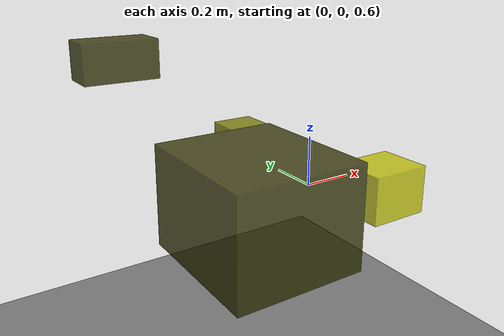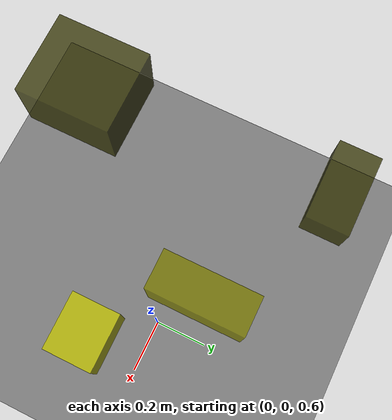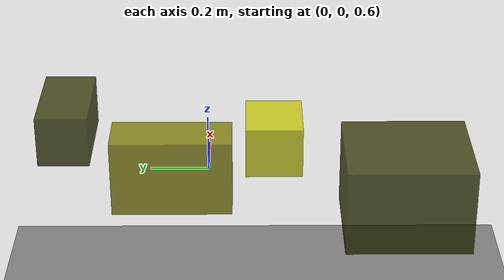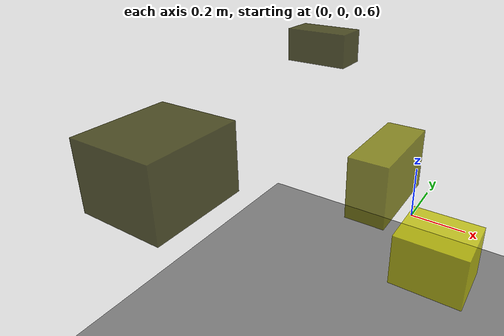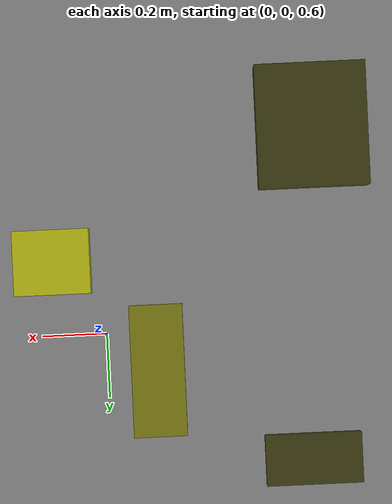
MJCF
<?xml version="1.0"?>
<mujoco model="obstacle_scene">
  <compiler angle="radian" coordinate="local"/>
  <option timestep="0.001" gravity="0 0 -9.81"/>

  <asset>
    <material name="obstacle_mat" rgba="0.8 0.8 0.0 0.8"/>
    <material name="ground_mat" rgba="0.5 0.5 0.5 1"/>
  </asset>

  <worldbody>
    <!-- Ground plane -->
    <geom name="ground" type="plane" size="3 3 0.1" material="ground_mat"/>

    <!-- Obstacles -->
    <body name="obstacle_0" pos="-0.658291 -0.611655 0.897731">
      <geom name="obs_0" type="box" size="0.167956 0.187825 0.133469" rgba="0.2 0.2 0.0 0.8"/>
    </body>
    <body name="obstacle_1" pos="-0.156922 0.118591 0.687342">
      <geom name="obs_1" type="box" size="0.082270 0.202686 0.132605" rgba="0.5 0.5 0.0 0.8"/>
    </body>
    <body name="obstacle_2" pos="0.160669 -0.230459 0.634778">
      <geom name="obs_2" type="box" size="0.119114 0.101093 0.092315" rgba="0.8 0.8 0.0 0.8"/>
    </body>
    <body name="obstacle_3" pos="-0.615427 0.394248 1.101196">
      <geom name="obs_3" type="box" size="0.143834 0.074578 0.074759" rgba="0.2 0.2 0.0 0.8"/>
    </body>
  </worldbody>
</mujoco>
